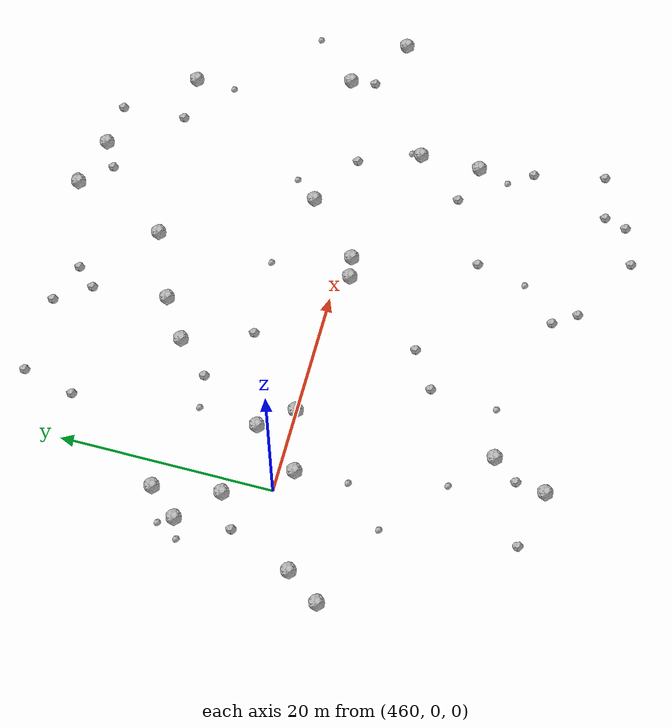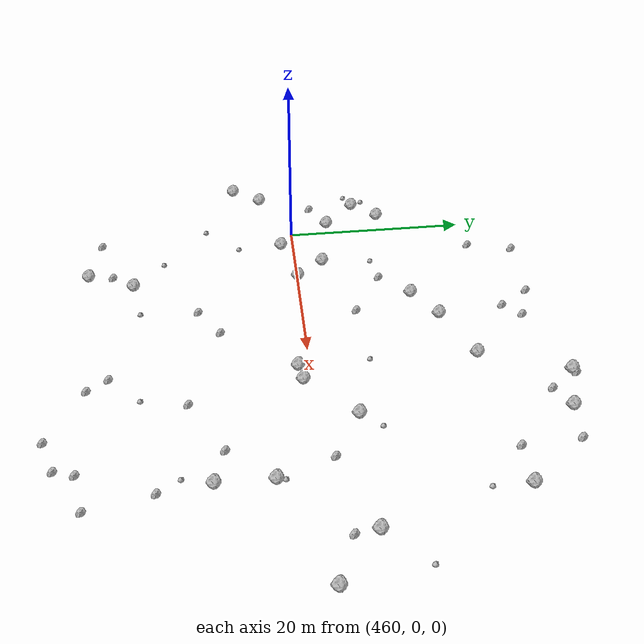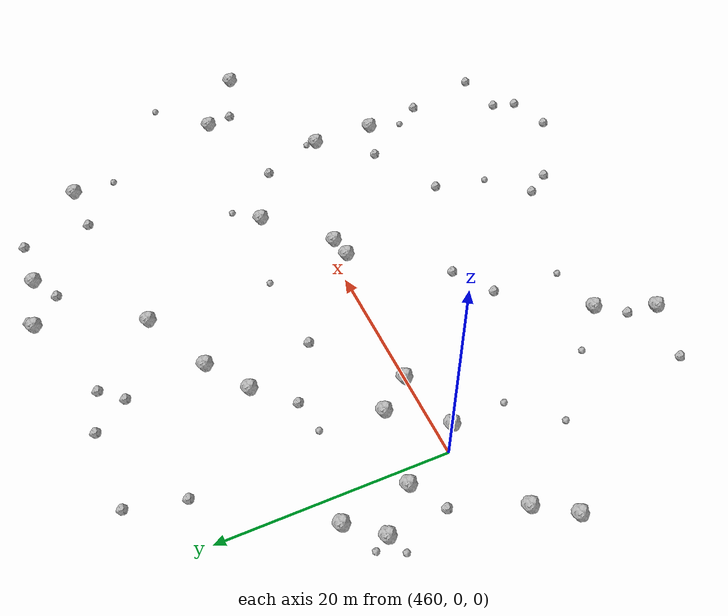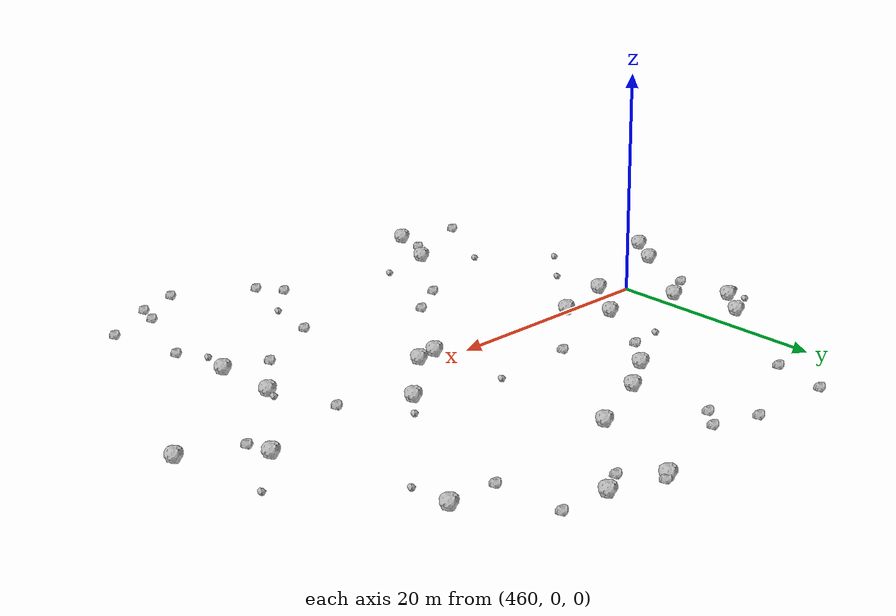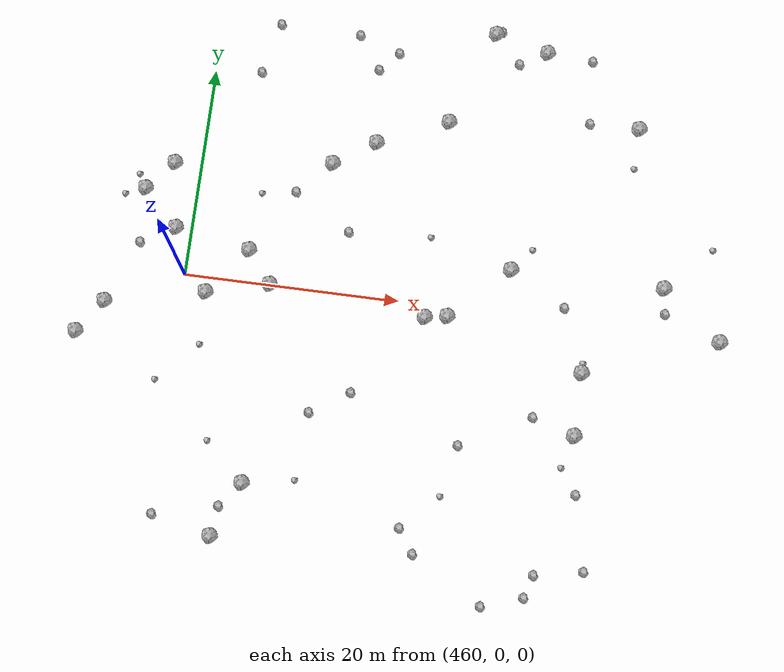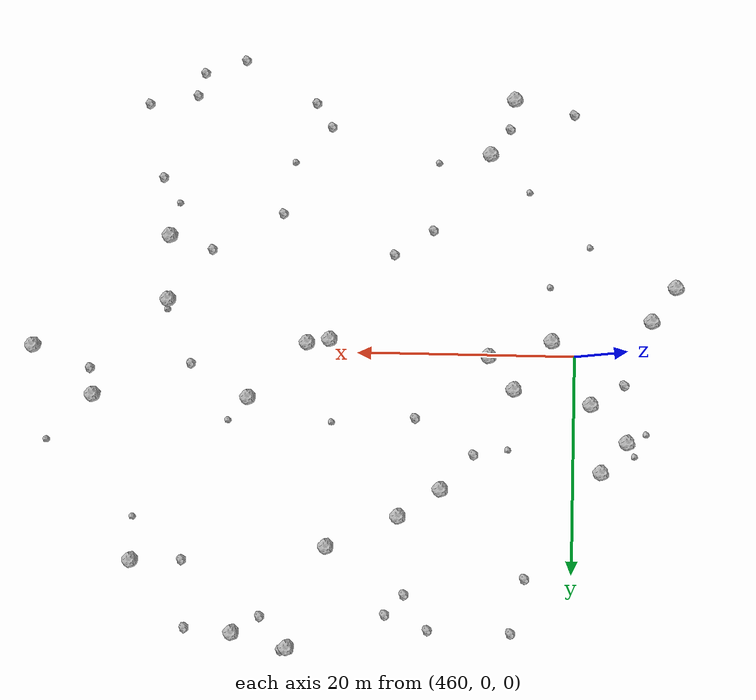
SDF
<sdf version="1.6">
 <world name="default">
  <include><uri>model://sun</uri></include>
  <model name="rock1_12_4">
   <include><uri>model://rock1</uri><pose>500.44197000833924 19.277697641639058 0.5 0 0 0</pose></include>
  </model>
  <model name="rock1_12_5">
   <include><uri>model://rock1</uri><pose>476.08147291377617 14.839844089112496 0.5 0 0 0</pose></include>
  </model>
  <model name="rock1_12_6">
   <include><uri>model://rock1</uri><pose>491.07255542848077 25.689043387744988 0.5 0 0 0</pose></include>
  </model>
  <model name="rock1_12_7">
   <include><uri>model://rock1</uri><pose>486.0243150563034 26.961905800343118 0.5 0 0 0</pose></include>
  </model>
  <model name="rock1_12_8">
   <include><uri>model://rock1</uri><pose>484.67896063380635 -0.8753756822404739 0.5 0 0 0</pose></include>
  </model>
  <model name="rock1_12_9">
   <include><uri>model://rock1</uri><pose>497.52053510303085 -4.598217855981975 0.5 0 0 0</pose></include>
  </model>
  <model name="rock1_12_10">
   <include><uri>model://rock1</uri><pose>455.22919617415346 7.735465206961855 0.5 0 0 0</pose></include>
  </model>
  <model name="rock1_12_11">
   <include><uri>model://rock1</uri><pose>462.235688212555 -1.4164932991532417 0.5 0 0 0</pose></include>
  </model>
  <model name="rock1_12_12">
   <include><uri>model://rock1</uri><pose>504.2485902032859 4.2456011927225745 0.5 0 0 0</pose></include>
  </model>
  <model name="rock1_12_13">
   <include><uri>model://rock1</uri><pose>482.60596916588025 17.71652615659322 0.5 0 0 0</pose></include>
  </model>
  <model name="rock1_12_14">
   <include><uri>model://rock1</uri><pose>490.0111152946929 4.233350903727398 0.5 0 0 0</pose></include>
  </model>
  <model name="rock1_12_15">
   <include><uri>model://rock1</uri><pose>457.5841334036245 10.518541842582394 0.5 0 0 0</pose></include>
  </model>
  <model name="rock1_12_16">
   <include><uri>model://rock1</uri><pose>468.01907330403 0.052157693740646494 0.5 0 0 0</pose></include>
  </model>
  <model name="rock1_12_17">
   <include><uri>model://rock1</uri><pose>465.95399465025173 -23.592530759682123 0.5 0 0 0</pose></include>
  </model>
  <model name="rock1_12_18">
   <include><uri>model://rock1</uri><pose>465.66263945916455 3.0589891270793217 0.5 0 0 0</pose></include>
  </model>
  <model name="rock1_12_19">
   <include><uri>model://rock1</uri><pose>450.9172823979556 -6.540281429393641 0.5 0 0 0</pose></include>
  </model>
  <model name="rock1_12_20">
   <include><uri>model://rock1</uri><pose>453.09074561307006 -3.405485037810493 0.5 0 0 0</pose></include>
  </model>
  <model name="rock1_12_21">
   <include><uri>model://rock1</uri><pose>472.2559696716422 12.311457156400735 0.5 0 0 0</pose></include>
  </model>
  <model name="rock1_12_22">
   <include><uri>model://rock1</uri><pose>497.472461861845 -10.457366742822146 0.5 0 0 0</pose></include>
  </model>
  <model name="rock1_12_23">
   <include><uri>model://rock1</uri><pose>468.1037243547945 -18.505625677137314 0.5 0 0 0</pose></include>
  </model>
  <model name="rock1_12_24">
   <include><uri>model://rock1</uri><pose>458.6042897989189 4.318792054849183 0.5 0 0 0</pose></include>
  </model>
  <model name="rock1_12_25">
   <include><uri>model://rock1</uri><pose>482.6286467514526 -1.2249835117578804 0.5 0 0 0</pose></include>
  </model>
  <model name="rock1_12_26">
   <include><uri>model://rock1</uri><pose>509.81581940576154 -0.14903421128986594 0.5 0 0 0</pose></include>
  </model>
  <model name="rock2_12_0">
   <include><uri>model://rock2</uri><pose>460.4089509982849 -22.295597581190048 0.3 0 0 0</pose></include>
  </model>
  <model name="rock2_12_1">
   <include><uri>model://rock2</uri><pose>473.1759000727791 25.240892286284343 0.3 0 0 0</pose></include>
  </model>
  <model name="rock2_12_2">
   <include><uri>model://rock2</uri><pose>484.185653443406 -22.932029247512723 0.3 0 0 0</pose></include>
  </model>
  <model name="rock2_12_3">
   <include><uri>model://rock2</uri><pose>474.61439972479565 5.912038417922716 0.3 0 0 0</pose></include>
  </model>
  <model name="rock2_12_4">
   <include><uri>model://rock2</uri><pose>499.5885084366487 -22.569747465507508 0.3 0 0 0</pose></include>
  </model>
  <model name="rock2_12_5">
   <include><uri>model://rock2</uri><pose>466.28972646471925 -20.852025459452168 0.3 0 0 0</pose></include>
  </model>
  <model name="rock2_12_6">
   <include><uri>model://rock2</uri><pose>490.76716062563776 -26.759824317747437 0.3 0 0 0</pose></include>
  </model>
  <model name="rock2_12_7">
   <include><uri>model://rock2</uri><pose>495.16727782299785 -23.41751760459343 0.3 0 0 0</pose></include>
  </model>
  <model name="rock2_12_8">
   <include><uri>model://rock2</uri><pose>495.397796172684 25.40947886460024 0.3 0 0 0</pose></include>
  </model>
  <model name="rock2_12_9">
   <include><uri>model://rock2</uri><pose>455.46446788932843 2.5426190971881084 0.3 0 0 0</pose></include>
  </model>
  <model name="rock2_12_10">
   <include><uri>model://rock2</uri><pose>464.37149365769903 20.400115215810303 0.3 0 0 0</pose></include>
  </model>
  <model name="rock2_12_11">
   <include><uri>model://rock2</uri><pose>482.72174228741045 -20.748934995566792 0.3 0 0 0</pose></include>
  </model>
  <model name="rock2_12_12">
   <include><uri>model://rock2</uri><pose>495.7733217857479 19.24021172262883 0.3 0 0 0</pose></include>
  </model>
  <model name="rock2_12_13">
   <include><uri>model://rock2</uri><pose>476.76410497003195 -9.069738729740067 0.3 0 0 0</pose></include>
  </model>
  <model name="rock2_12_14">
   <include><uri>model://rock2</uri><pose>473.2094669867909 -11.367195072847029 0.3 0 0 0</pose></include>
  </model>
  <model name="rock2_12_15">
   <include><uri>model://rock2</uri><pose>493.528304154117 -9.23240134744572 0.3 0 0 0</pose></include>
  </model>
  <model name="rock2_12_16">
   <include><uri>model://rock2</uri><pose>498.15872362644103 -15.78332789313457 0.3 0 0 0</pose></include>
  </model>
  <model name="rock2_12_17">
   <include><uri>model://rock2</uri><pose>475.3734022550117 22.038045079631274 0.3 0 0 0</pose></include>
  </model>
  <model name="rock2_12_18">
   <include><uri>model://rock2</uri><pose>477.08870973422535 23.906688014020737 0.3 0 0 0</pose></include>
  </model>
  <model name="rock2_12_19">
   <include><uri>model://rock2</uri><pose>469.21548374575923 9.151776767533796 0.3 0 0 0</pose></include>
  </model>
  <model name="rock2_12_20">
   <include><uri>model://rock2</uri><pose>494.5203002261753 -25.526139503056648 0.3 0 0 0</pose></include>
  </model>
  <model name="rock2_12_21">
   <include><uri>model://rock2</uri><pose>486.5403845302846 27.283263338075145 0.3 0 0 0</pose></include>
  </model>
  <model name="rock2_12_22">
   <include><uri>model://rock2</uri><pose>488.52261193164236 24.25883608262076 0.3 0 0 0</pose></include>
  </model>
  <model name="rock2_12_23">
   <include><uri>model://rock2</uri><pose>465.5731962382453 25.381649793080825 0.3 0 0 0</pose></include>
  </model>
  <model name="rock2_12_24">
   <include><uri>model://rock2</uri><pose>495.2915405410442 1.2715898689562266 0.3 0 0 0</pose></include>
  </model>
  <model name="rock2_12_25">
   <include><uri>model://rock2</uri><pose>504.5594151621879 1.8628217802229798 0.3 0 0 0</pose></include>
  </model>
  <model name="rock2_12_26">
   <include><uri>model://rock2</uri><pose>487.06210379412965 -12.658054521381608 0.3 0 0 0</pose></include>
  </model>
  <model name="rock3_12_0">
   <include><uri>model://rock3</uri><pose>453.36594901511586 6.979759060607719 0.2 0 0 0</pose></include>
  </model>
  <model name="rock3_12_1">
   <include><uri>model://rock3</uri><pose>466.0446777309887 8.621770777841924 0.2 0 0 0</pose></include>
  </model>
  <model name="rock3_12_2">
   <include><uri>model://rock3</uri><pose>482.2624110236943 6.372513788652732 0.2 0 0 0</pose></include>
  </model>
  <model name="rock3_12_3">
   <include><uri>model://rock3</uri><pose>500.338770104775 15.358088418794665 0.2 0 0 0</pose></include>
  </model>
  <model name="rock3_12_4">
   <include><uri>model://rock3</uri><pose>497.53981124958364 -3.7025995385526222 0.2 0 0 0</pose></include>
  </model>
  <model name="rock3_12_5">
   <include><uri>model://rock3</uri><pose>454.4132462741133 9.029882925047886 0.2 0 0 0</pose></include>
  </model>
  <model name="rock3_12_6">
   <include><uri>model://rock3</uri><pose>508.39244935353304 8.455800607807468 0.2 0 0 0</pose></include>
  </model>
  <model name="rock3_12_7">
   <include><uri>model://rock3</uri><pose>491.77080067677423 6.372579714331877 0.2 0 0 0</pose></include>
  </model>
  <model name="rock3_12_8">
   <include><uri>model://rock3</uri><pose>464.3832272457153 -15.095710068263203 0.2 0 0 0</pose></include>
  </model>
  <model name="rock3_12_9">
   <include><uri>model://rock3</uri><pose>462.3580591887945 -6.370447793356135 0.2 0 0 0</pose></include>
  </model>
  <model name="rock3_12_10">
   <include><uri>model://rock3</uri><pose>472.7730627203369 -17.67233842206635 0.2 0 0 0</pose></include>
  </model>
  <model name="rock3_12_11">
   <include><uri>model://rock3</uri><pose>486.0112870879136 -17.47791569210051 0.2 0 0 0</pose></include>
  </model>
  <model name="rock3_12_12">
   <include><uri>model://rock3</uri><pose>496.588031611192 -13.506801612631417 0.2 0 0 0</pose></include>
  </model>
  <model name="rock3_12_13">
   <include><uri>model://rock3</uri><pose>458.7677831507778 -10.114749042233651 0.2 0 0 0</pose></include>
  </model>
 </world>
</sdf>
